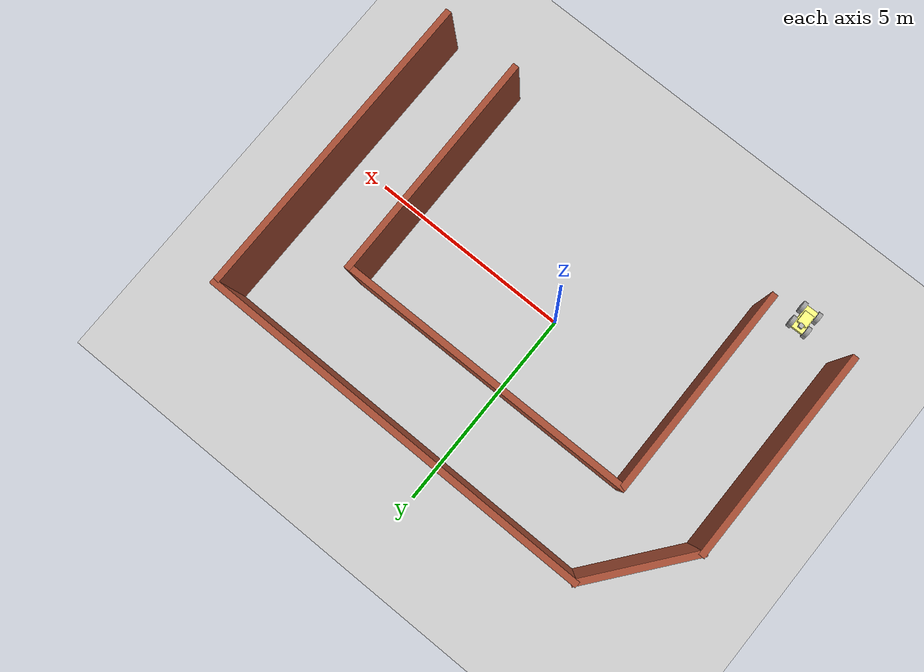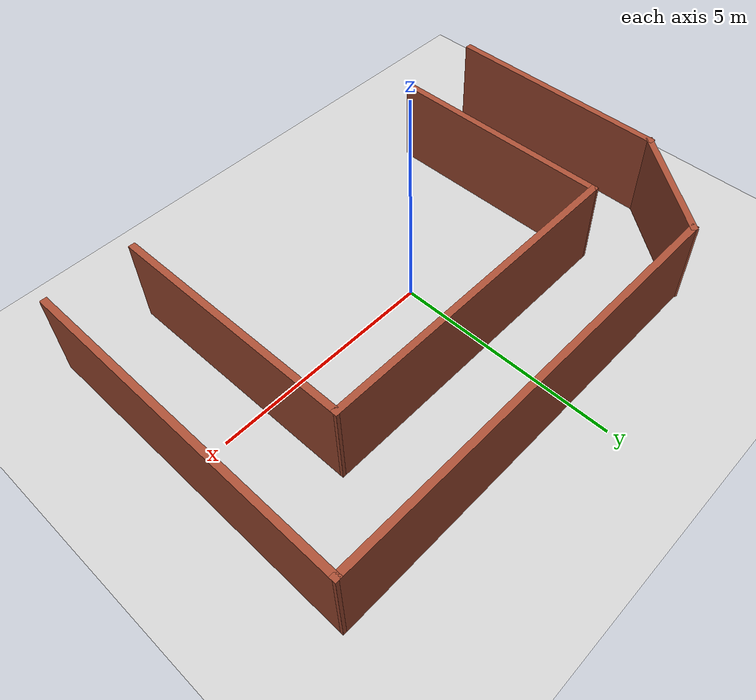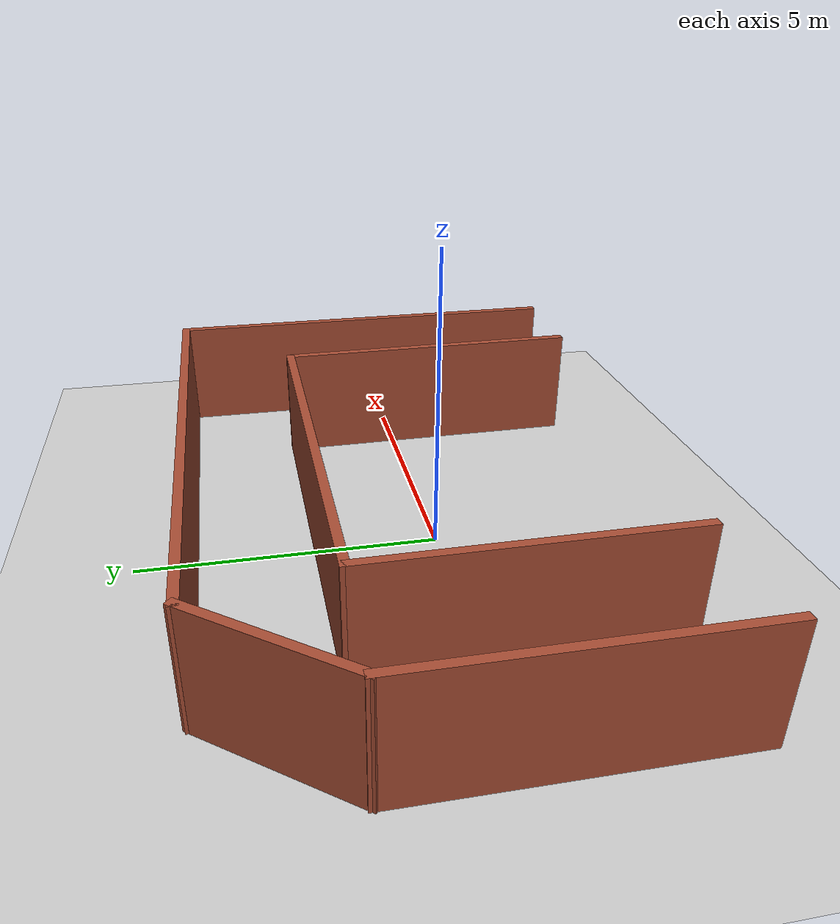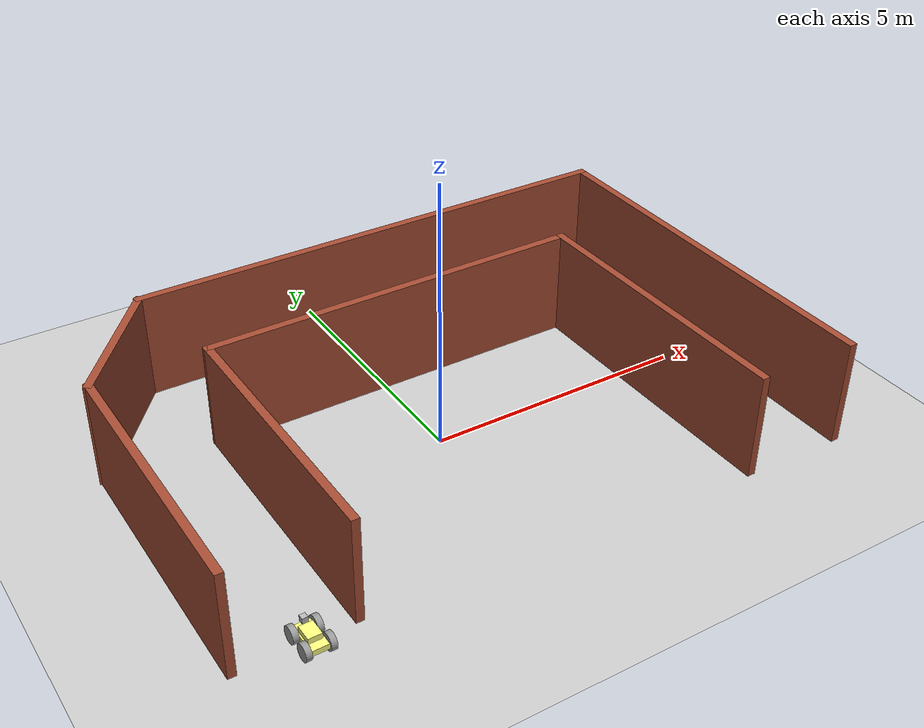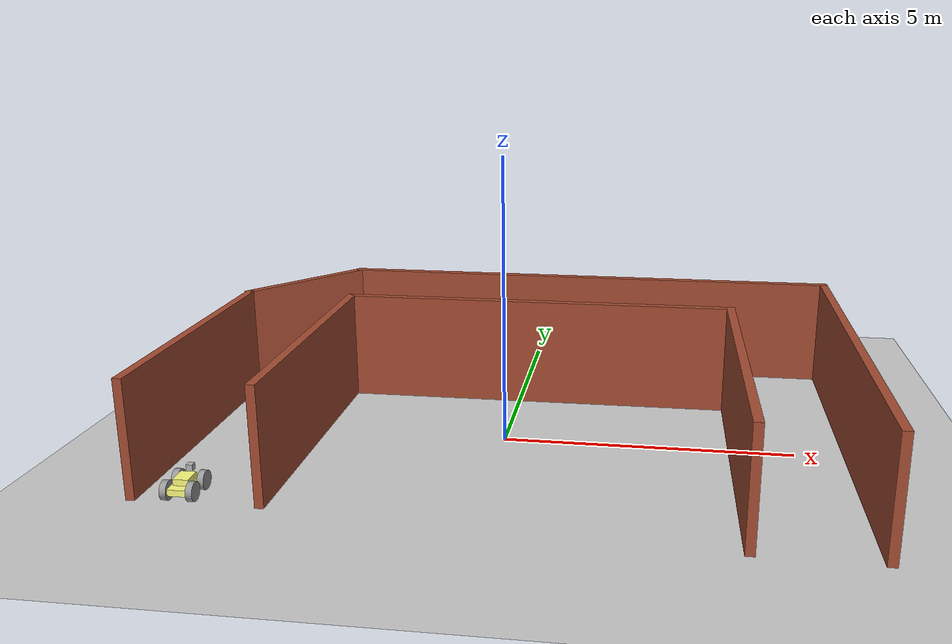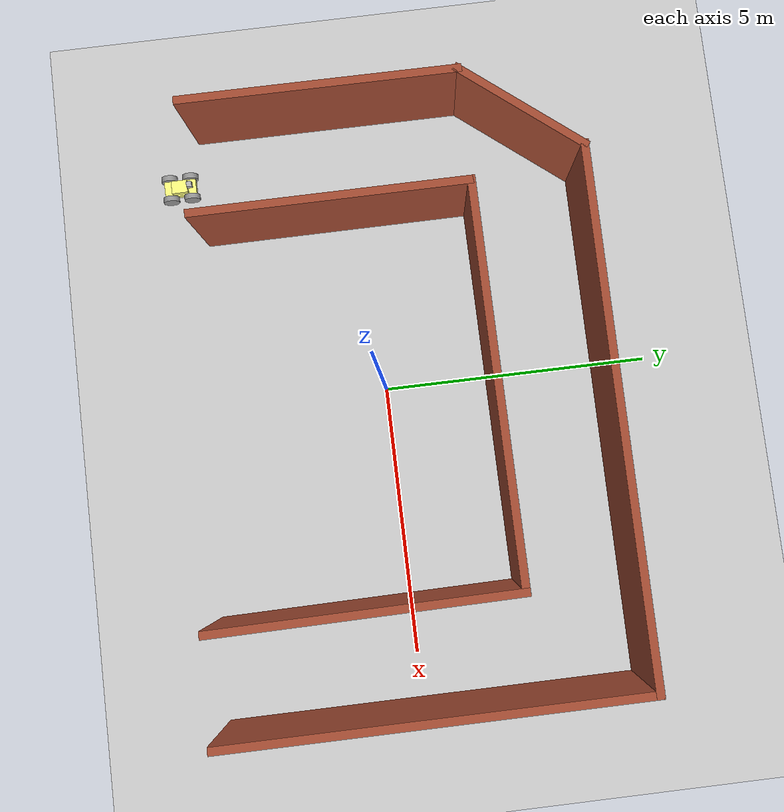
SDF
<sdf version="1.7">
 <world name="default">
  <light name="sun" type="directional">
   <pose>0 0 10 0 -0 0</pose>
   <diffuse>0.8 0.8 0.8 1</diffuse>
   <specular>0.2 0.2 0.2 1</specular>
   <attenuation>
    <range>1000</range>
    <constant>0.9</constant>
    <linear>0.01</linear>
    <quadratic>0.001</quadratic>
   </attenuation>
   <direction>-0.5 0.1 -0.9</direction>
   <spot><inner_angle>0</inner_angle><outer_angle>0</outer_angle><falloff>0</falloff></spot>
  </light>
  <model name="ground_plane">
   <static>1</static>
   <link name="link">
    <collision name="collision">
     <geometry><plane><normal>0 0 1</normal><size>100 100</size></plane></geometry>
     <surface>
      <contact><collide_bitmask>65535</collide_bitmask></contact>
      <friction><ode><mu>100</mu><mu2>50</mu2></ode></friction>
     </surface>
    </collision>
    <visual name="visual">
     <cast_shadows>0</cast_shadows>
     <geometry><plane><normal>0 0 1</normal><size>100 100</size></plane></geometry>
     <material>
      <script><uri>file://media/materials/scripts/gazebo.material</uri><name>Gazebo/Grey</name></script>
     </material>
    </visual>
   </link>
  </model>
  <gravity>0 0 -9.8</gravity>
  <magnetic_field>6e-06 2.3e-05 -4.2e-05</magnetic_field>
  <atmosphere type="adiabatic"/>
  <physics type="ode">
   <max_step_size>0.001</max_step_size>
   <real_time_factor>1</real_time_factor>
   <real_time_update_rate>1000</real_time_update_rate>
  </physics>
  <scene><ambient>0.4 0.4 0.4 1</ambient><background>0.7 0.7 0.7 1</background><shadows>1</shadows></scene>
  <spherical_coordinates>
   <surface_model>EARTH_WGS84</surface_model>
   <latitude_deg>0</latitude_deg>
   <longitude_deg>0</longitude_deg>
   <elevation>0</elevation>
   <heading_deg>0</heading_deg>
  </spherical_coordinates>
  <model name="race2">
   <pose>0.24496 0.280198 0 0 -0 0</pose>
   <link name="Wall_0">
    <collision name="Wall_0_Collision">
     <geometry><box><size>5.19016 0.15 2</size></box></geometry>
     <pose>0 0 1 0 -0 0</pose>
    </collision>
    <visual name="Wall_0_Visual">
     <pose>0 0 1 0 -0 0</pose>
     <geometry><box><size>5.19016 0.15 2</size></box></geometry>
     <material>
      <script><uri>file://media/materials/scripts/gazebo.material</uri><name>Gazebo/Bricks</name></script>
      <ambient>1 1 1 1</ambient>
     </material>
     <meta><layer>0</layer></meta>
    </visual>
    <pose>-5.61996 -0.810198 0 0 -0 1.56881</pose>
   </link>
   <link name="Wall_1">
    <collision name="Wall_1_Collision">
     <geometry><box><size>2.79715 0.15 2</size></box></geometry>
     <pose>0 0 1 0 -0 0</pose>
    </collision>
    <visual name="Wall_1_Visual">
     <pose>0 0 1 0 -0 0</pose>
     <geometry><box><size>2.79715 0.15 2</size></box></geometry>
     <material>
      <script><uri>file://media/materials/scripts/gazebo.material</uri><name>Gazebo/Bricks</name></script>
      <ambient>1 1 1 1</ambient>
     </material>
     <meta><layer>0</layer></meta>
    </visual>
    <pose>-4.78996 2.7448 0 0 -0 0.897825</pose>
   </link>
   <link name="Wall_2">
    <collision name="Wall_2_Collision">
     <geometry><box><size>9.76008 0.15 2</size></box></geometry>
     <pose>0 0 1 0 -0 0</pose>
    </collision>
    <visual name="Wall_2_Visual">
     <pose>0 0 1 0 -0 0</pose>
     <geometry><box><size>9.76008 0.15 2</size></box></geometry>
     <material>
      <script><uri>file://media/materials/scripts/gazebo.material</uri><name>Gazebo/Bricks</name></script>
      <ambient>1 1 1 1</ambient>
     </material>
     <meta><layer>0</layer></meta>
    </visual>
    <pose>0.840042 3.7598 0 0 -0 -0.004162</pose>
   </link>
   <link name="Wall_3">
    <collision name="Wall_3_Collision">
     <geometry><box><size>7.7 0.15 2</size></box></geometry>
     <pose>0 0 1 0 -0 0</pose>
    </collision>
    <visual name="Wall_3_Visual">
     <pose>0 0 1 0 -0 0</pose>
     <geometry><box><size>7.7 0.15 2</size></box></geometry>
     <material>
      <script><uri>file://media/materials/scripts/gazebo.material</uri><name>Gazebo/Bricks</name></script>
      <ambient>1 1 1 1</ambient>
     </material>
     <meta><layer>0</layer></meta>
    </visual>
    <pose>5.64504 -0.035198 0 0 -0 -1.5708</pose>
   </link>
   <link name="Wall_5">
    <collision name="Wall_5_Collision">
     <geometry><box><size>5.17001 0.15 2</size></box></geometry>
     <pose>0 0 1 0 -0 0</pose>
    </collision>
    <visual name="Wall_5_Visual">
     <pose>0 0 1 0 -0 0</pose>
     <geometry><box><size>5.17001 0.15 2</size></box></geometry>
     <material>
      <script><uri>file://media/materials/scripts/gazebo.material</uri><name>Gazebo/Bricks</name></script>
      <ambient>1 1 1 1</ambient>
     </material>
     <meta><layer>0</layer></meta>
    </visual>
    <pose>-3.54996 -0.810198 0 0 -0 1.57279</pose>
   </link>
   <link name="Wall_6">
    <collision name="Wall_6_Collision">
     <geometry><box><size>7.40006 0.15 2</size></box></geometry>
     <pose>0 0 1 0 -0 0</pose>
    </collision>
    <visual name="Wall_6_Visual">
     <pose>0 0 1 0 -0 0</pose>
     <geometry><box><size>7.40006 0.15 2</size></box></geometry>
     <material>
      <script><uri>file://media/materials/scripts/gazebo.material</uri><name>Gazebo/Bricks</name></script>
      <ambient>1 1 1 1</ambient>
     </material>
     <meta><layer>0</layer></meta>
    </visual>
    <pose>0.070042 1.7148 0 0 -0 0.004138</pose>
   </link>
   <link name="Wall_7">
    <collision name="Wall_7_Collision">
     <geometry><box><size>5.65023 0.15 2</size></box></geometry>
     <pose>0 0 1 0 -0 0</pose>
    </collision>
    <visual name="Wall_7_Visual">
     <pose>0 0 1 0 -0 0</pose>
     <geometry><box><size>5.65023 0.15 2</size></box></geometry>
     <material>
      <script><uri>file://media/materials/scripts/gazebo.material</uri><name>Gazebo/Bricks</name></script>
      <ambient>1 1 1 1</ambient>
     </material>
     <meta><layer>0</layer></meta>
    </visual>
    <pose>3.72004 -1.0202 0 0 -0 -1.56171</pose>
   </link>
   <static>1</static>
  </model>
  <model name="project_model_v1">
   <link name="chassis">
    <inertial>
     <mass>7</mass>
     <inertia>
      <ixx>0.0394333</ixx>
      <ixy>0</ixy>
      <ixz>0</ixz>
      <iyy>0.21491</iyy>
      <iyz>0</iyz>
      <izz>0.242677</izz>
     </inertia>
    </inertial>
    <pose>0 0 0.5 0 -0 0</pose>
    <visual name="visual">
     <geometry><box><size>0.59868 0.3 0.1</size></box></geometry>
     <material>
      <lighting>1</lighting>
      <script><uri>file://media/materials/scripts/gazebo.material</uri><name>Gazebo/Grey</name></script>
      <shader type="pixel"><normal_map>__default__</normal_map></shader>
      <emissive>0 0 0 1</emissive>
      <ambient>1 1 0.5 1</ambient>
      <diffuse>1 1 0.5 1</diffuse>
      <specular>0.01 0.01 0.01 1</specular>
     </material>
    </visual>
    <visual name="ModelPreview_1::chassis::visual_1">
     <geometry><box><size>0.59868 0.3 0.1</size></box></geometry>
     <material>
      <lighting>1</lighting>
      <script><uri>file://media/materials/scripts/gazebo.material</uri><name>Gazebo/Grey</name></script>
      <shader type="pixel"><normal_map>__default__</normal_map></shader>
      <emissive>0 0 0 1</emissive>
      <ambient>1 1 0.5 1</ambient>
      <diffuse>1 1 0.5 1</diffuse>
      <specular>0.01 0.01 0.01 1</specular>
     </material>
    </visual>
    <collision name="collision">
     <geometry><box><size>0.59868 0.24 0.1</size></box></geometry>
     <surface>
      <friction>
       <ode><mu>1</mu><mu2>1</mu2><fdir1>0 0 0</fdir1><slip1>0</slip1><slip2>0</slip2></ode>
       <torsional>
        <coefficient>1</coefficient>
        <patch_radius>0</patch_radius>
        <surface_radius>0</surface_radius>
        <use_patch_radius>1</use_patch_radius>
        <ode><slip>0</slip></ode>
       </torsional>
      </friction>
      <bounce><restitution_coefficient>0</restitution_coefficient><threshold>1e+06</threshold></bounce>
      <contact>
       <collide_without_contact>0</collide_without_contact>
       <collide_without_contact_bitmask>1</collide_without_contact_bitmask>
       <collide_bitmask>1</collide_bitmask>
       <ode>
        <soft_cfm>0</soft_cfm>
        <soft_erp>0.2</soft_erp>
        <kp>1e+13</kp>
        <kd>1</kd>
        <max_vel>0.01</max_vel>
        <min_depth>0</min_depth>
       </ode>
       <bullet>
        <split_impulse>1</split_impulse>
        <split_impulse_penetration_threshold>-0.01</split_impulse_penetration_threshold>
        <soft_cfm>0</soft_cfm>
        <soft_erp>0.2</soft_erp>
        <kp>1e+13</kp>
        <kd>1</kd>
       </bullet>
      </contact>
     </surface>
    </collision>
   </link>
   <link name="left_back_wheel">
    <inertial>
     <mass>1</mass>
     <inertia>
      <ixx>0.00645833</ixx>
      <ixy>0</ixy>
      <ixz>0</ixz>
      <iyy>0.00645833</iyy>
      <iyz>0</iyz>
      <izz>0.01125</izz>
     </inertia>
    </inertial>
    <pose>-0.2 0.2 0.5 1.5707 2.8e-05 0.004847</pose>
    <visual name="visual">
     <geometry><cylinder><radius>0.15</radius><length>0.1</length></cylinder></geometry>
     <material>
      <lighting>1</lighting>
      <script><uri>file://media/materials/scripts/gazebo.material</uri><name>Gazebo/Grey</name></script>
      <shader type="pixel"><normal_map>__default__</normal_map></shader>
      <ambient>0 0 0 1</ambient>
      <diffuse>0 0 0 1</diffuse>
      <specular>0.01 0.01 0.01 1</specular>
      <emissive>0 0 0 1</emissive>
     </material>
    </visual>
    <collision name="collision">
     <geometry><cylinder><radius>0.15</radius><length>0.1</length></cylinder></geometry>
     <surface>
      <friction>
       <ode><mu>1</mu><mu2>1</mu2><fdir1>0 0 0</fdir1><slip1>0</slip1><slip2>0</slip2></ode>
       <torsional>
        <coefficient>1</coefficient>
        <patch_radius>0</patch_radius>
        <surface_radius>0</surface_radius>
        <use_patch_radius>1</use_patch_radius>
        <ode><slip>0</slip></ode>
       </torsional>
      </friction>
      <bounce><restitution_coefficient>0</restitution_coefficient><threshold>1e+06</threshold></bounce>
      <contact>
       <collide_without_contact>0</collide_without_contact>
       <collide_without_contact_bitmask>1</collide_without_contact_bitmask>
       <collide_bitmask>1</collide_bitmask>
       <ode>
        <soft_cfm>0</soft_cfm>
        <soft_erp>0.2</soft_erp>
        <kp>1e+13</kp>
        <kd>1</kd>
        <max_vel>0.01</max_vel>
        <min_depth>0</min_depth>
       </ode>
       <bullet>
        <split_impulse>1</split_impulse>
        <split_impulse_penetration_threshold>-0.01</split_impulse_penetration_threshold>
        <soft_cfm>0</soft_cfm>
        <soft_erp>0.2</soft_erp>
        <kp>1e+13</kp>
        <kd>1</kd>
       </bullet>
      </contact>
     </surface>
    </collision>
   </link>
   <link name="left_wheel">
    <inertial>
     <mass>1</mass>
     <inertia>
      <ixx>0.00645833</ixx>
      <ixy>0</ixy>
      <ixz>0</ixz>
      <iyy>0.00645833</iyy>
      <iyz>0</iyz>
      <izz>0.01125</izz>
     </inertia>
    </inertial>
    <pose>0.2 0.2 0.5 1.5707 -0 0</pose>
    <visual name="visual">
     <geometry><cylinder><radius>0.15</radius><length>0.1</length></cylinder></geometry>
     <material>
      <lighting>1</lighting>
      <script><uri>file://media/materials/scripts/gazebo.material</uri><name>Gazebo/Grey</name></script>
      <shader type="pixel"><normal_map>__default__</normal_map></shader>
      <ambient>0 0 0 1</ambient>
      <diffuse>0 0 0 1</diffuse>
      <specular>0.01 0.01 0.01 1</specular>
      <emissive>0 0 0 1</emissive>
     </material>
    </visual>
    <collision name="collision">
     <geometry><cylinder><radius>0.15</radius><length>0.1</length></cylinder></geometry>
     <surface>
      <friction>
       <ode><mu>1</mu><mu2>1</mu2><fdir1>0 0 0</fdir1><slip1>0</slip1><slip2>0</slip2></ode>
       <torsional>
        <coefficient>1</coefficient>
        <patch_radius>0</patch_radius>
        <surface_radius>0</surface_radius>
        <use_patch_radius>1</use_patch_radius>
        <ode><slip>0</slip></ode>
       </torsional>
      </friction>
      <bounce><restitution_coefficient>0</restitution_coefficient><threshold>1e+06</threshold></bounce>
      <contact>
       <collide_without_contact>0</collide_without_contact>
       <collide_without_contact_bitmask>1</collide_without_contact_bitmask>
       <collide_bitmask>1</collide_bitmask>
       <ode>
        <soft_cfm>0</soft_cfm>
        <soft_erp>0.2</soft_erp>
        <kp>1e+13</kp>
        <kd>1</kd>
        <max_vel>0.01</max_vel>
        <min_depth>0</min_depth>
       </ode>
       <bullet>
        <split_impulse>1</split_impulse>
        <split_impulse_penetration_threshold>-0.01</split_impulse_penetration_threshold>
        <soft_cfm>0</soft_cfm>
        <soft_erp>0.2</soft_erp>
        <kp>1e+13</kp>
        <kd>1</kd>
       </bullet>
      </contact>
     </surface>
    </collision>
   </link>
   <link name="link_0">
    <inertial>
     <mass>3</mass>
     <inertia><ixx>0.0169</ixx><ixy>0</ixy><ixz>0</ixz><iyy>0.025</iyy><iyz>0</iyz><izz>0.0369</izz></inertia>
    </inertial>
    <pose>0 0 0.6 0 -0 0</pose>
    <visual name="visual">
     <geometry><box><size>0.3 0.24 0.1</size></box></geometry>
     <material>
      <lighting>1</lighting>
      <script><uri>file://media/materials/scripts/gazebo.material</uri><name>Gazebo/Grey</name></script>
      <shader type="pixel"><normal_map>__default__</normal_map></shader>
      <ambient>1 1 0.5 1</ambient>
      <diffuse>1 1 0.5 1</diffuse>
      <specular>0.01 0.01 0.01 1</specular>
      <emissive>0 0 0 1</emissive>
     </material>
    </visual>
    <collision name="collision">
     <geometry><box><size>0.3 0.24 0.1</size></box></geometry>
     <surface>
      <friction>
       <ode><mu>1</mu><mu2>1</mu2><fdir1>0 0 0</fdir1><slip1>0</slip1><slip2>0</slip2></ode>
       <torsional>
        <coefficient>1</coefficient>
        <patch_radius>0</patch_radius>
        <surface_radius>0</surface_radius>
        <use_patch_radius>1</use_patch_radius>
        <ode><slip>0</slip></ode>
       </torsional>
      </friction>
      <bounce><restitution_coefficient>0</restitution_coefficient><threshold>1e+06</threshold></bounce>
      <contact>
       <collide_without_contact>0</collide_without_contact>
       <collide_without_contact_bitmask>1</collide_without_contact_bitmask>
       <collide_bitmask>1</collide_bitmask>
       <ode>
        <soft_cfm>0</soft_cfm>
        <soft_erp>0.2</soft_erp>
        <kp>1e+13</kp>
        <kd>1</kd>
        <max_vel>0.01</max_vel>
        <min_depth>0</min_depth>
       </ode>
       <bullet>
        <split_impulse>1</split_impulse>
        <split_impulse_penetration_threshold>-0.01</split_impulse_penetration_threshold>
        <soft_cfm>0</soft_cfm>
        <soft_erp>0.2</soft_erp>
        <kp>1e+13</kp>
        <kd>1</kd>
       </bullet>
      </contact>
     </surface>
    </collision>
   </link>
   <link name="right_back_wheel">
    <inertial>
     <mass>1</mass>
     <inertia>
      <ixx>0.00645833</ixx>
      <ixy>0</ixy>
      <ixz>0</ixz>
      <iyy>0.00645833</iyy>
      <iyz>0</iyz>
      <izz>0.01125</izz>
     </inertia>
    </inertial>
    <pose>-0.2 -0.2 0.5 1.57071 2.8e-05 0.004847</pose>
    <visual name="visual">
     <geometry><cylinder><radius>0.15</radius><length>0.1</length></cylinder></geometry>
     <material>
      <lighting>1</lighting>
      <script><uri>file://media/materials/scripts/gazebo.material</uri><name>Gazebo/Grey</name></script>
      <shader type="pixel"><normal_map>__default__</normal_map></shader>
      <ambient>0 0 0 1</ambient>
      <diffuse>0 0 0 1</diffuse>
      <specular>0.01 0.01 0.01 1</specular>
      <emissive>0 0 0 1</emissive>
     </material>
    </visual>
    <collision name="collision">
     <geometry><cylinder><radius>0.15</radius><length>0.1</length></cylinder></geometry>
     <surface>
      <friction>
       <ode><mu>1</mu><mu2>1</mu2><fdir1>0 0 0</fdir1><slip1>0</slip1><slip2>0</slip2></ode>
       <torsional>
        <coefficient>1</coefficient>
        <patch_radius>0</patch_radius>
        <surface_radius>0</surface_radius>
        <use_patch_radius>1</use_patch_radius>
        <ode><slip>0</slip></ode>
       </torsional>
      </friction>
      <bounce><restitution_coefficient>0</restitution_coefficient><threshold>1e+06</threshold></bounce>
      <contact>
       <collide_without_contact>0</collide_without_contact>
       <collide_without_contact_bitmask>1</collide_without_contact_bitmask>
       <collide_bitmask>1</collide_bitmask>
       <ode>
        <soft_cfm>0</soft_cfm>
        <soft_erp>0.2</soft_erp>
        <kp>1e+13</kp>
        <kd>1</kd>
        <max_vel>0.01</max_vel>
        <min_depth>0</min_depth>
       </ode>
       <bullet>
        <split_impulse>1</split_impulse>
        <split_impulse_penetration_threshold>-0.01</split_impulse_penetration_threshold>
        <soft_cfm>0</soft_cfm>
        <soft_erp>0.2</soft_erp>
        <kp>1e+13</kp>
        <kd>1</kd>
       </bullet>
      </contact>
     </surface>
    </collision>
   </link>
   <link name="right_wheel">
    <inertial>
     <mass>1</mass>
     <inertia>
      <ixx>0.00645833</ixx>
      <ixy>0</ixy>
      <ixz>0</ixz>
      <iyy>0.00645833</iyy>
      <iyz>0</iyz>
      <izz>0.01125</izz>
     </inertia>
    </inertial>
    <pose>0.2 -0.2 0.5 1.5707 -0 0</pose>
    <visual name="visual">
     <geometry><cylinder><radius>0.15</radius><length>0.1</length></cylinder></geometry>
     <material>
      <lighting>1</lighting>
      <script><uri>file://media/materials/scripts/gazebo.material</uri><name>Gazebo/Grey</name></script>
      <shader type="pixel"><normal_map>__default__</normal_map></shader>
      <ambient>0 0 0 1</ambient>
      <diffuse>0 0 0 1</diffuse>
      <specular>0.01 0.01 0.01 1</specular>
      <emissive>0 0 0 1</emissive>
     </material>
    </visual>
    <collision name="collision">
     <geometry><cylinder><radius>0.15</radius><length>0.1</length></cylinder></geometry>
     <surface>
      <friction>
       <ode><mu>1</mu><mu2>1</mu2><fdir1>0 0 0</fdir1><slip1>0</slip1><slip2>0</slip2></ode>
       <torsional>
        <coefficient>1</coefficient>
        <patch_radius>0</patch_radius>
        <surface_radius>0</surface_radius>
        <use_patch_radius>1</use_patch_radius>
        <ode><slip>0</slip></ode>
       </torsional>
      </friction>
      <bounce><restitution_coefficient>0</restitution_coefficient><threshold>1e+06</threshold></bounce>
      <contact>
       <collide_without_contact>0</collide_without_contact>
       <collide_without_contact_bitmask>1</collide_without_contact_bitmask>
       <collide_bitmask>1</collide_bitmask>
       <ode>
        <soft_cfm>0</soft_cfm>
        <soft_erp>0.2</soft_erp>
        <kp>1e+13</kp>
        <kd>1</kd>
        <max_vel>0.01</max_vel>
        <min_depth>0</min_depth>
       </ode>
       <bullet>
        <split_impulse>1</split_impulse>
        <split_impulse_penetration_threshold>-0.01</split_impulse_penetration_threshold>
        <soft_cfm>0</soft_cfm>
        <soft_erp>0.2</soft_erp>
        <kp>1e+13</kp>
        <kd>1</kd>
       </bullet>
      </contact>
     </surface>
    </collision>
   </link>
   <model name="camera_model">
    <pose>0.205013 -0.003476 0.698937 0 -0 0</pose>
    <link name="camera_link">
     <inertial>
      <mass>0.1</mass>
      <inertia>
       <ixx>0.000166667</ixx>
       <iyy>0.000166667</iyy>
       <izz>0.000166667</izz>
       <ixy>0</ixy>
       <ixz>0</ixz>
       <iyz>0</iyz>
      </inertia>
     </inertial>
     <collision name="collision"><geometry><box><size>0.1 0.1 0.1</size></box></geometry></collision>
     <visual name="visual"><geometry><box><size>0.1 0.1 0.1</size></box></geometry></visual>
     <sensor name="lidar" type="ray">
      <always_on>1</always_on>
      <visualize>1</visualize>
      <update_rate>5</update_rate>
      <ray>
       <scan>
        <horizontal>
         <samples>360</samples>
         <resolution>1</resolution>
         <min_angle>0</min_angle>
         <max_angle>6.28</max_angle>
        </horizontal>
        <vertical><samples>1</samples><min_angle>0</min_angle><max_angle>0</max_angle></vertical>
       </scan>
       <range><min>0.12</min><max>3.5</max><resolution>0.015</resolution></range>
       <noise><type>gaussian</type><mean>0</mean><stddev>0.01</stddev></noise>
      </ray>
      <plugin name="scan" filename="libgazebo_ros_ray_sensor.so">
       <ros><remapping>~/out:=scan</remapping></ros>
       <output_type>sensor_msgs/LaserScan</output_type>
       <frame_name>lidar_link</frame_name>
      </plugin>
     </sensor>
    </link>
   </model>
   <joint name="chassis_JOINT_0" type="fixed">
    <parent>chassis</parent>
    <child>camera_model::camera_link</child>
    <physics>
     <ode><limit><cfm>0</cfm><erp>0.2</erp></limit><suspension><cfm>0</cfm><erp>0.2</erp></suspension></ode>
    </physics>
   </joint>
   <joint name="left_back_wheel_joint" type="revolute">
    <parent>chassis</parent>
    <child>left_back_wheel</child>
    <axis>
     <xyz>0 0 1</xyz>
     <limit>
      <lower>-1.79769e+308</lower>
      <upper>1.79769e+308</upper>
      <effort>-1</effort>
      <velocity>-1</velocity>
     </limit>
     <dynamics>
      <spring_reference>0</spring_reference>
      <spring_stiffness>0</spring_stiffness>
      <damping>0</damping>
      <friction>0</friction>
     </dynamics>
    </axis>
    <physics>
     <ode><limit><cfm>0</cfm><erp>0.2</erp></limit><suspension><cfm>0</cfm><erp>0.2</erp></suspension></ode>
    </physics>
   </joint>
   <joint name="left_wheel_joint" type="revolute">
    <parent>chassis</parent>
    <child>left_wheel</child>
    <axis>
     <xyz>0 0 1</xyz>
     <limit>
      <lower>-1.79769e+308</lower>
      <upper>1.79769e+308</upper>
      <effort>-1</effort>
      <velocity>-1</velocity>
     </limit>
     <dynamics>
      <spring_reference>0</spring_reference>
      <spring_stiffness>0</spring_stiffness>
      <damping>0</damping>
      <friction>0</friction>
     </dynamics>
    </axis>
    <physics>
     <ode><limit><cfm>0</cfm><erp>0.2</erp></limit><suspension><cfm>0</cfm><erp>0.2</erp></suspension></ode>
    </physics>
   </joint>
   <joint name="link_0_JOINT_0" type="fixed">
    <parent>chassis</parent>
    <child>link_0</child>
    <physics>
     <ode><limit><cfm>0</cfm><erp>0.2</erp></limit><suspension><cfm>0</cfm><erp>0.2</erp></suspension></ode>
    </physics>
   </joint>
   <joint name="right_back_wheel_joint" type="revolute">
    <parent>chassis</parent>
    <child>right_back_wheel</child>
    <axis>
     <xyz>0 0 1</xyz>
     <limit>
      <lower>-1.79769e+308</lower>
      <upper>1.79769e+308</upper>
      <effort>-1</effort>
      <velocity>-1</velocity>
     </limit>
     <dynamics>
      <spring_reference>0</spring_reference>
      <spring_stiffness>0</spring_stiffness>
      <damping>0</damping>
      <friction>0</friction>
     </dynamics>
    </axis>
    <physics>
     <ode><limit><cfm>0</cfm><erp>0.2</erp></limit><suspension><cfm>0</cfm><erp>0.2</erp></suspension></ode>
    </physics>
   </joint>
   <joint name="right_wheel_joint" type="revolute">
    <parent>chassis</parent>
    <child>right_wheel</child>
    <axis>
     <xyz>0 0 1</xyz>
     <limit>
      <lower>-1.79769e+308</lower>
      <upper>1.79769e+308</upper>
      <effort>-1</effort>
      <velocity>-1</velocity>
     </limit>
     <dynamics>
      <spring_reference>0</spring_reference>
      <spring_stiffness>0</spring_stiffness>
      <damping>0</damping>
      <friction>0</friction>
     </dynamics>
    </axis>
    <physics>
     <ode><limit><cfm>0</cfm><erp>0.2</erp></limit><suspension><cfm>0</cfm><erp>0.2</erp></suspension></ode>
    </physics>
   </joint>
   <static>0</static>
   <plugin name="diff_drive" filename="libgazebo_ros_diff_drive.so">
    <ros>
     <namespace>/</namespace>
     <remapping>cmd_vel:=cmd_vel</remapping>
     <remapping>odom:=odom_demo</remapping>
    </ros>
    <num_wheel_pairs>2</num_wheel_pairs>
    <left_joint>left_wheel_joint</left_joint>
    <left_joint>left_back_wheel_joint</left_joint>
    <right_joint>right_wheel_joint</right_joint>
    <right_joint>right_back_wheel_joint</right_joint>
    <wheel_separation>1.25</wheel_separation>
    <wheel_diameter>0.3</wheel_diameter>
    <max_wheel_torque>20</max_wheel_torque>
    <max_wheel_acceleration>1.0</max_wheel_acceleration>
    <publish_odom>1</publish_odom>
    <publish_odom_tf>1</publish_odom_tf>
    <publish_wheel_tf>1</publish_wheel_tf>
    <odometry_frame>odom_demo</odometry_frame>
    <robot_base_frame>chassis</robot_base_frame>
   </plugin>
   <pose>-4.27029 -3.45675 0 0 -0 1.58259</pose>
  </model>
 </world>
</sdf>
